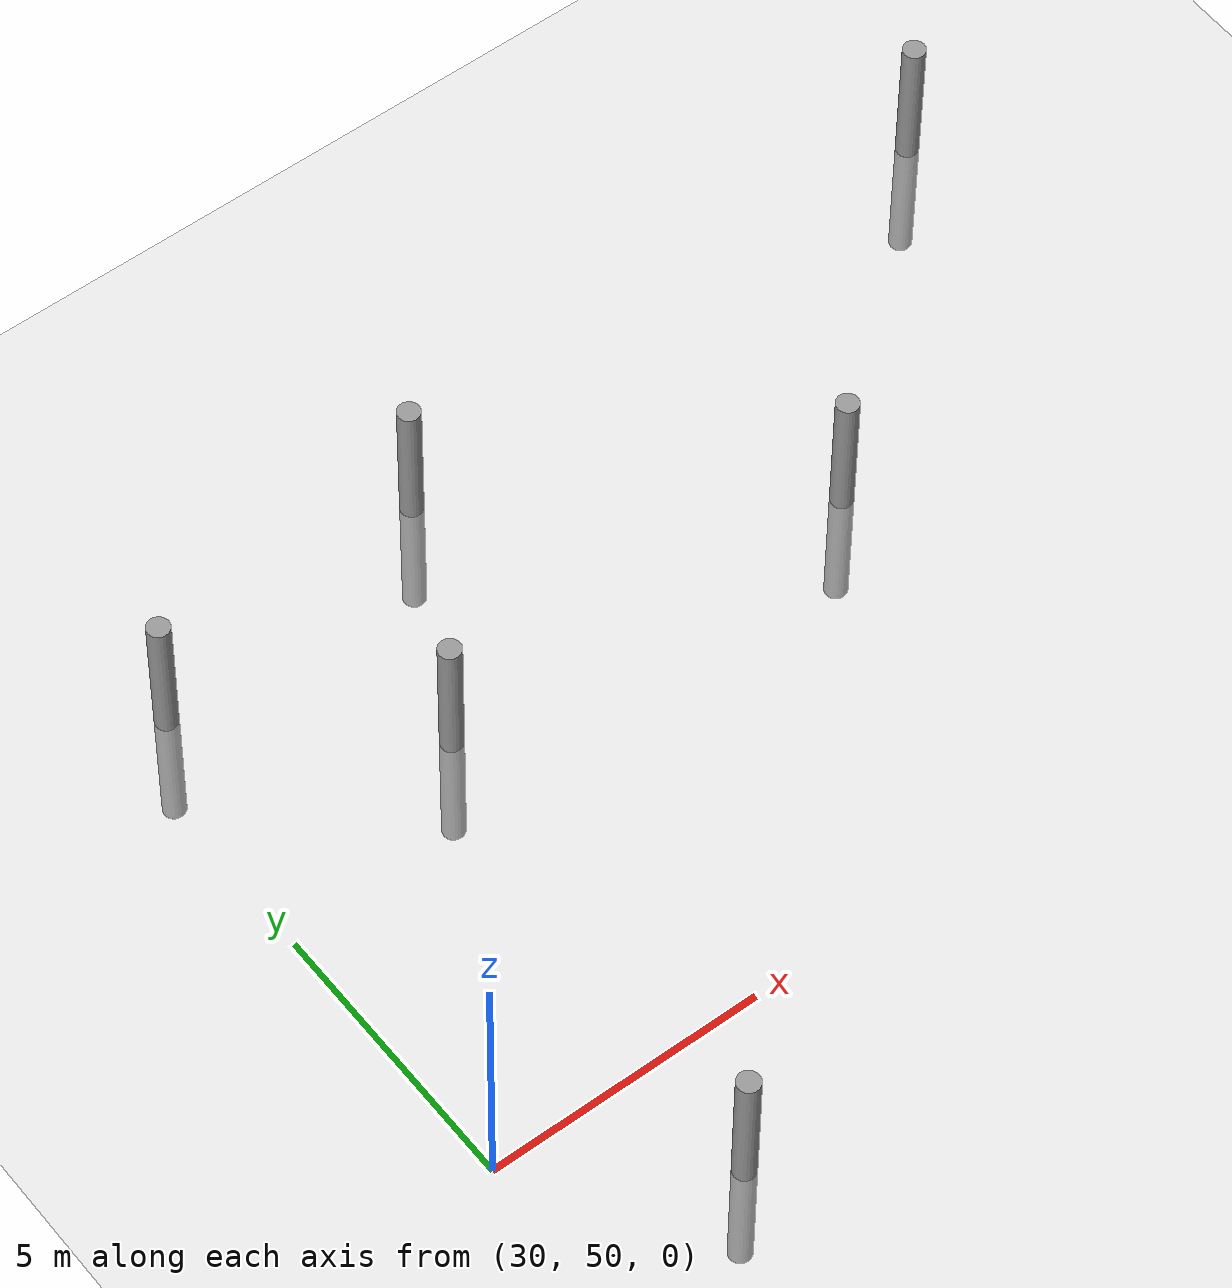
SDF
<sdf version="1.6">
 <world name="default">
  <model name="ground_plane">
   <static>1</static>
   <link name="link">
    <collision name="collision">
     <geometry><plane><normal>0 0 1</normal><size>100 100</size></plane></geometry>
     <surface><friction><ode><mu>100</mu><mu2>50</mu2></ode></friction></surface>
    </collision>
    <visual name="visual">
     <cast_shadows>0</cast_shadows>
     <geometry><plane><normal>0 0 1</normal><size>100 100</size></plane></geometry>
     <material>
      <script><uri>file://media/materials/scripts/gazebo.material</uri><name>Gazebo/Grey</name></script>
     </material>
    </visual>
   </link>
  </model>
  <model name="empty_pillars_1">
   <model name="empty_pillar_clone_10">
    <link name="link">
     <inertial>
      <mass>1</mass>
      <inertia><ixx>0.145833</ixx><ixy>0</ixy><ixz>0</ixz><iyy>0.145833</iyy><iyz>0</iyz><izz>0.125</izz></inertia>
     </inertial>
     <visual name="visual">
      <geometry><cylinder><radius>0.2</radius><length>5</length></cylinder></geometry>
      <material>
       <script><name>Gazebo/Grey</name><uri>file://media/materials/scripts/gazebo.material</uri></script>
       <shader type="vertex"><normal_map>__default__</normal_map></shader>
       <ambient>0.3 0.3 0.3 1</ambient>
       <diffuse>0.7 0.7 0.7 1</diffuse>
       <specular>0.01 0.01 0.01 1</specular>
       <emissive>0 0 0 1</emissive>
      </material>
     </visual>
     <collision name="collision">
      <geometry><cylinder><radius>0.05</radius><length>5</length></cylinder></geometry>
      <surface>
       <friction>
        <ode><mu>1</mu><mu2>1</mu2><fdir1>0 0 0</fdir1><slip1>0</slip1><slip2>0</slip2></ode>
        <torsional>
         <coefficient>1</coefficient>
         <patch_radius>0</patch_radius>
         <surface_radius>0</surface_radius>
         <use_patch_radius>1</use_patch_radius>
         <ode><slip>0</slip></ode>
        </torsional>
       </friction>
       <bounce><restitution_coefficient>0</restitution_coefficient><threshold>1e+06</threshold></bounce>
       <contact>
        <collide_without_contact>0</collide_without_contact>
        <collide_without_contact_bitmask>1</collide_without_contact_bitmask>
        <collide_bitmask>1</collide_bitmask>
        <ode>
         <soft_cfm>0</soft_cfm>
         <soft_erp>0.2</soft_erp>
         <kp>1e+13</kp>
         <kd>1</kd>
         <max_vel>0.01</max_vel>
         <min_depth>0</min_depth>
        </ode>
        <bullet>
         <split_impulse>1</split_impulse>
         <split_impulse_penetration_threshold>-0.01</split_impulse_penetration_threshold>
         <soft_cfm>0</soft_cfm>
         <soft_erp>0.2</soft_erp>
         <kp>1e+13</kp>
         <kd>1</kd>
        </bullet>
       </contact>
      </surface>
     </collision>
    </link>
    <static>0</static>
    <pose>13.5083 -16.8403 0 0 -0 0</pose>
   </model>
   <model name="empty_pillar_clone_11">
    <link name="link">
     <inertial>
      <mass>1</mass>
      <inertia><ixx>0.145833</ixx><ixy>0</ixy><ixz>0</ixz><iyy>0.145833</iyy><iyz>0</iyz><izz>0.125</izz></inertia>
     </inertial>
     <visual name="visual">
      <geometry><cylinder><radius>0.2</radius><length>5</length></cylinder></geometry>
      <material>
       <script><name>Gazebo/Grey</name><uri>file://media/materials/scripts/gazebo.material</uri></script>
       <shader type="vertex"><normal_map>__default__</normal_map></shader>
       <ambient>0.3 0.3 0.3 1</ambient>
       <diffuse>0.7 0.7 0.7 1</diffuse>
       <specular>0.01 0.01 0.01 1</specular>
       <emissive>0 0 0 1</emissive>
      </material>
     </visual>
     <collision name="collision">
      <geometry><cylinder><radius>0.05</radius><length>5</length></cylinder></geometry>
      <surface>
       <friction>
        <ode><mu>1</mu><mu2>1</mu2><fdir1>0 0 0</fdir1><slip1>0</slip1><slip2>0</slip2></ode>
        <torsional>
         <coefficient>1</coefficient>
         <patch_radius>0</patch_radius>
         <surface_radius>0</surface_radius>
         <use_patch_radius>1</use_patch_radius>
         <ode><slip>0</slip></ode>
        </torsional>
       </friction>
       <bounce><restitution_coefficient>0</restitution_coefficient><threshold>1e+06</threshold></bounce>
       <contact>
        <collide_without_contact>0</collide_without_contact>
        <collide_without_contact_bitmask>1</collide_without_contact_bitmask>
        <collide_bitmask>1</collide_bitmask>
        <ode>
         <soft_cfm>0</soft_cfm>
         <soft_erp>0.2</soft_erp>
         <kp>1e+13</kp>
         <kd>1</kd>
         <max_vel>0.01</max_vel>
         <min_depth>0</min_depth>
        </ode>
        <bullet>
         <split_impulse>1</split_impulse>
         <split_impulse_penetration_threshold>-0.01</split_impulse_penetration_threshold>
         <soft_cfm>0</soft_cfm>
         <soft_erp>0.2</soft_erp>
         <kp>1e+13</kp>
         <kd>1</kd>
        </bullet>
       </contact>
      </surface>
     </collision>
    </link>
    <static>0</static>
    <pose>7.98536 -17.8403 0 0 -0 0</pose>
   </model>
   <model name="empty_pillar_clone_34">
    <link name="link">
     <inertial>
      <mass>1</mass>
      <inertia><ixx>0.145833</ixx><ixy>0</ixy><ixz>0</ixz><iyy>0.145833</iyy><iyz>0</iyz><izz>0.125</izz></inertia>
     </inertial>
     <visual name="visual">
      <geometry><cylinder><radius>0.2</radius><length>5</length></cylinder></geometry>
      <material>
       <script><name>Gazebo/Grey</name><uri>file://media/materials/scripts/gazebo.material</uri></script>
       <shader type="vertex"><normal_map>__default__</normal_map></shader>
       <ambient>0.3 0.3 0.3 1</ambient>
       <diffuse>0.7 0.7 0.7 1</diffuse>
       <specular>0.01 0.01 0.01 1</specular>
       <emissive>0 0 0 1</emissive>
      </material>
     </visual>
     <collision name="collision">
      <geometry><cylinder><radius>0.05</radius><length>5</length></cylinder></geometry>
      <surface>
       <friction>
        <ode><mu>1</mu><mu2>1</mu2><fdir1>0 0 0</fdir1><slip1>0</slip1><slip2>0</slip2></ode>
        <torsional>
         <coefficient>1</coefficient>
         <patch_radius>0</patch_radius>
         <surface_radius>0</surface_radius>
         <use_patch_radius>1</use_patch_radius>
         <ode><slip>0</slip></ode>
        </torsional>
       </friction>
       <bounce><restitution_coefficient>0</restitution_coefficient><threshold>1e+06</threshold></bounce>
       <contact>
        <collide_without_contact>0</collide_without_contact>
        <collide_without_contact_bitmask>1</collide_without_contact_bitmask>
        <collide_bitmask>1</collide_bitmask>
        <ode>
         <soft_cfm>0</soft_cfm>
         <soft_erp>0.2</soft_erp>
         <kp>1e+13</kp>
         <kd>1</kd>
         <max_vel>0.01</max_vel>
         <min_depth>0</min_depth>
        </ode>
        <bullet>
         <split_impulse>1</split_impulse>
         <split_impulse_penetration_threshold>-0.01</split_impulse_penetration_threshold>
         <soft_cfm>0</soft_cfm>
         <soft_erp>0.2</soft_erp>
         <kp>1e+13</kp>
         <kd>1</kd>
        </bullet>
       </contact>
      </surface>
     </collision>
    </link>
    <static>0</static>
    <pose>19.0861 -20.8946 0 0 -0 0</pose>
   </model>
   <model name="empty_pillar_clone_52">
    <link name="link">
     <inertial>
      <mass>1</mass>
      <inertia><ixx>0.145833</ixx><ixy>0</ixy><ixz>0</ixz><iyy>0.145833</iyy><iyz>0</iyz><izz>0.125</izz></inertia>
     </inertial>
     <visual name="visual">
      <geometry><cylinder><radius>0.2</radius><length>5</length></cylinder></geometry>
      <material>
       <script><name>Gazebo/Grey</name><uri>file://media/materials/scripts/gazebo.material</uri></script>
       <shader type="vertex"><normal_map>__default__</normal_map></shader>
       <ambient>0.3 0.3 0.3 1</ambient>
       <diffuse>0.7 0.7 0.7 1</diffuse>
       <specular>0.01 0.01 0.01 1</specular>
       <emissive>0 0 0 1</emissive>
      </material>
     </visual>
     <collision name="collision">
      <geometry><cylinder><radius>0.05</radius><length>5</length></cylinder></geometry>
      <surface>
       <friction>
        <ode><mu>1</mu><mu2>1</mu2><fdir1>0 0 0</fdir1><slip1>0</slip1><slip2>0</slip2></ode>
        <torsional>
         <coefficient>1</coefficient>
         <patch_radius>0</patch_radius>
         <surface_radius>0</surface_radius>
         <use_patch_radius>1</use_patch_radius>
         <ode><slip>0</slip></ode>
        </torsional>
       </friction>
       <bounce><restitution_coefficient>0</restitution_coefficient><threshold>1e+06</threshold></bounce>
       <contact>
        <collide_without_contact>0</collide_without_contact>
        <collide_without_contact_bitmask>1</collide_without_contact_bitmask>
        <collide_bitmask>1</collide_bitmask>
        <ode>
         <soft_cfm>0</soft_cfm>
         <soft_erp>0.2</soft_erp>
         <kp>1e+13</kp>
         <kd>1</kd>
         <max_vel>0.01</max_vel>
         <min_depth>0</min_depth>
        </ode>
        <bullet>
         <split_impulse>1</split_impulse>
         <split_impulse_penetration_threshold>-0.01</split_impulse_penetration_threshold>
         <soft_cfm>0</soft_cfm>
         <soft_erp>0.2</soft_erp>
         <kp>1e+13</kp>
         <kd>1</kd>
        </bullet>
       </contact>
      </surface>
     </collision>
    </link>
    <static>0</static>
    <pose>11.2833 -20.8743 0 0 -0 0</pose>
   </model>
   <model name="empty_pillar_clone_54">
    <link name="link">
     <inertial>
      <mass>1</mass>
      <inertia><ixx>0.145833</ixx><ixy>0</ixy><ixz>0</ixz><iyy>0.145833</iyy><iyz>0</iyz><izz>0.125</izz></inertia>
     </inertial>
     <visual name="visual">
      <geometry><cylinder><radius>0.2</radius><length>5</length></cylinder></geometry>
      <material>
       <script><name>Gazebo/Grey</name><uri>file://media/materials/scripts/gazebo.material</uri></script>
       <shader type="vertex"><normal_map>__default__</normal_map></shader>
       <ambient>0.3 0.3 0.3 1</ambient>
       <diffuse>0.7 0.7 0.7 1</diffuse>
       <specular>0.01 0.01 0.01 1</specular>
       <emissive>0 0 0 1</emissive>
      </material>
     </visual>
     <collision name="collision">
      <geometry><cylinder><radius>0.05</radius><length>5</length></cylinder></geometry>
      <surface>
       <friction>
        <ode><mu>1</mu><mu2>1</mu2><fdir1>0 0 0</fdir1><slip1>0</slip1><slip2>0</slip2></ode>
        <torsional>
         <coefficient>1</coefficient>
         <patch_radius>0</patch_radius>
         <surface_radius>0</surface_radius>
         <use_patch_radius>1</use_patch_radius>
         <ode><slip>0</slip></ode>
        </torsional>
       </friction>
       <bounce><restitution_coefficient>0</restitution_coefficient><threshold>1e+06</threshold></bounce>
       <contact>
        <collide_without_contact>0</collide_without_contact>
        <collide_without_contact_bitmask>1</collide_without_contact_bitmask>
        <collide_bitmask>1</collide_bitmask>
        <ode>
         <soft_cfm>0</soft_cfm>
         <soft_erp>0.2</soft_erp>
         <kp>1e+13</kp>
         <kd>1</kd>
         <max_vel>0.01</max_vel>
         <min_depth>0</min_depth>
        </ode>
        <bullet>
         <split_impulse>1</split_impulse>
         <split_impulse_penetration_threshold>-0.01</split_impulse_penetration_threshold>
         <soft_cfm>0</soft_cfm>
         <soft_erp>0.2</soft_erp>
         <kp>1e+13</kp>
         <kd>1</kd>
        </bullet>
       </contact>
      </surface>
     </collision>
    </link>
    <static>0</static>
    <pose>24.557 -15.8784 0 0 -0 0</pose>
   </model>
   <static>0</static>
   <pose>22.8728 77.4317 0 0 -0 0</pose>
  </model>
  <model name="empty_pillars_4">
   <model name="empty_pillar_clone_26">
    <link name="link">
     <inertial>
      <mass>1</mass>
      <inertia><ixx>0.145833</ixx><ixy>0</ixy><ixz>0</ixz><iyy>0.145833</iyy><iyz>0</iyz><izz>0.125</izz></inertia>
     </inertial>
     <visual name="visual">
      <geometry><cylinder><radius>0.2</radius><length>5</length></cylinder></geometry>
      <material>
       <script><name>Gazebo/Grey</name><uri>file://media/materials/scripts/gazebo.material</uri></script>
       <shader type="vertex"><normal_map>__default__</normal_map></shader>
       <ambient>0.3 0.3 0.3 1</ambient>
       <diffuse>0.7 0.7 0.7 1</diffuse>
       <specular>0.01 0.01 0.01 1</specular>
       <emissive>0 0 0 1</emissive>
      </material>
     </visual>
     <collision name="collision">
      <geometry><cylinder><radius>0.05</radius><length>5</length></cylinder></geometry>
      <surface>
       <friction>
        <ode><mu>1</mu><mu2>1</mu2><fdir1>0 0 0</fdir1><slip1>0</slip1><slip2>0</slip2></ode>
        <torsional>
         <coefficient>1</coefficient>
         <patch_radius>0</patch_radius>
         <surface_radius>0</surface_radius>
         <use_patch_radius>1</use_patch_radius>
         <ode><slip>0</slip></ode>
        </torsional>
       </friction>
       <bounce><restitution_coefficient>0</restitution_coefficient><threshold>1e+06</threshold></bounce>
       <contact>
        <collide_without_contact>0</collide_without_contact>
        <collide_without_contact_bitmask>1</collide_without_contact_bitmask>
        <collide_bitmask>1</collide_bitmask>
        <ode>
         <soft_cfm>0</soft_cfm>
         <soft_erp>0.2</soft_erp>
         <kp>1e+13</kp>
         <kd>1</kd>
         <max_vel>0.01</max_vel>
         <min_depth>0</min_depth>
        </ode>
        <bullet>
         <split_impulse>1</split_impulse>
         <split_impulse_penetration_threshold>-0.01</split_impulse_penetration_threshold>
         <soft_cfm>0</soft_cfm>
         <soft_erp>0.2</soft_erp>
         <kp>1e+13</kp>
         <kd>1</kd>
        </bullet>
       </contact>
      </surface>
     </collision>
    </link>
    <static>0</static>
    <pose>7.70652 20.1444 0 0 -0 0</pose>
   </model>
   <static>0</static>
   <pose>25.2837 27.6164 0 0 -0 0</pose>
  </model>
 </world>
</sdf>
